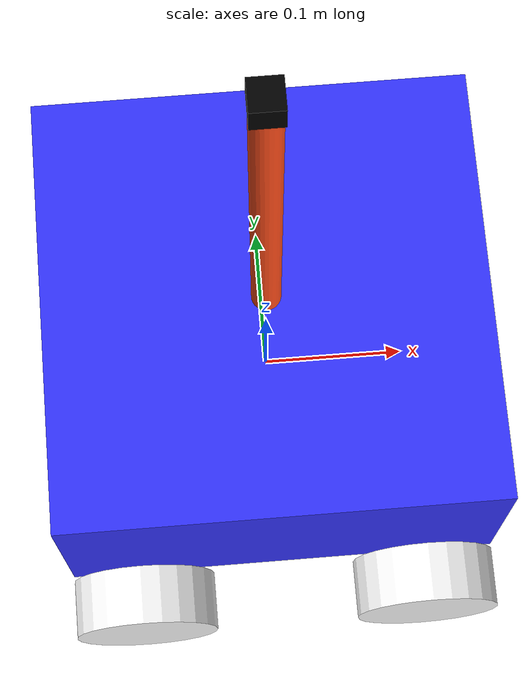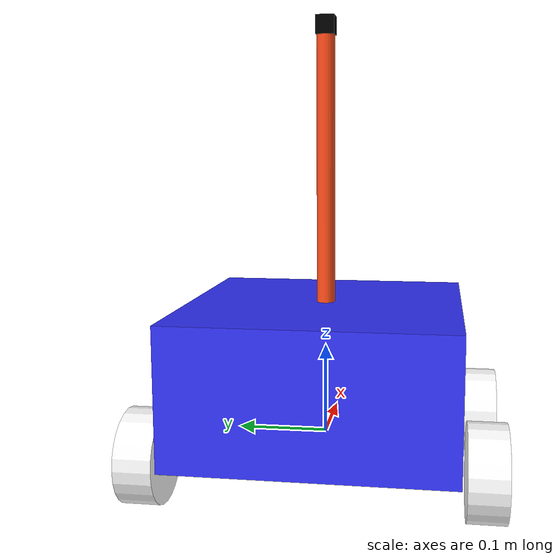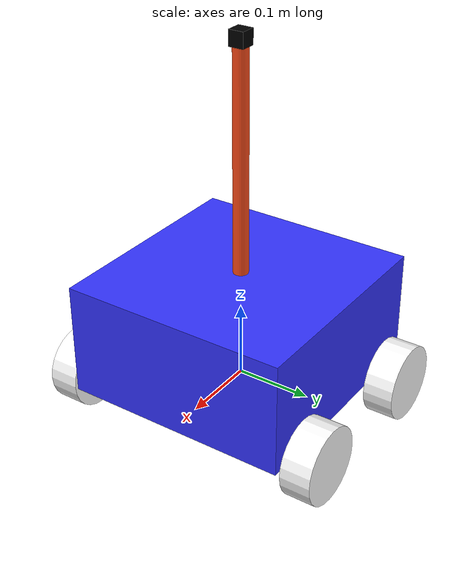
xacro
<?xml version="1.0"?>
<robot xmlns:xacro="http://www.ros.org/wiki/xacro">

    <xacro:include filename="inertial_macros.xacro"/>

    <material name="white">
        <color rgba="1 1 1 1"/>
    </material>

    <material name="orange">
        <color rgba="1 0.3 0.1 1"/>
    </material>

    <material name="blue">
        <color rgba="0.2 0.2 1 1"/>
    </material>

    <material name="black">
        <color rgba="0 0 0 1"/>
    </material>

    <material name="red">
        <color rgba="1 0 0 1"/>
    </material>

    <gazebo>
        <plugin filename="libgazebo_ros_control.so" name="gazebo_ros_control">
          <robotSimType>sr_gazebo_sim/SrGazeboHWSim</robotSimType>
        </plugin>
      </gazebo>

    <!-- BASE LINK/-->

    <link name="base_link">

    </link>

    <!--CHASSIS LINK/-->

    <joint name="chassis_joint" type="fixed">
        <parent link="base_link"/>
        <child link="chassis"/>
        <origin xyz="0.0 0.0 0.0"/>
    </joint>

    <link name="chassis">
        <visual>
            <origin xyz="0.0 0.0 0.075"/>
            <geometry>
                <box size="0.3 0.3 0.15"/>
            </geometry>
            <material name="blue"/>
        </visual>
        <collision>
            <origin xyz="0.0 0.0 0.075"/>
            <geometry>
                <box size="0.3 0.3 0.15"/>
            </geometry>
        </collision>
        <xacro:inertial_box mass="1.5" x="0.3" y="0.3" z="0.15">
            <origin xyz="0.0 0.0 0.075" rpy="0.0 0.0 0.0"/>
        </xacro:inertial_box>
    </link>

    <gazebo reference = "chassis">
        <material>Gazebo/Blue</material>
    </gazebo>

    <!-- LEFT WHEEL LINK -->

    <joint name="left_wheel_joint" type="continuous">
            <parent link="base_link"/>
            <child link="left_wheel"/>
            <origin xyz="-0.1 -0.175 0.0" rpy="-${pi/2}  0.0 0.0"/>
            <axis xyz="0.0 0.0 -1.0"/>
    </joint>

    <link name="left_wheel">
        <visual>
            <origin xyz="0.0 0.0 0.0" rpy="0.0  0.0 0.0"/>
            <geometry>
                <cylinder radius="0.05" length="0.04"/>

            </geometry>
            <material name="white"/>
        </visual>
        <collision>
            <geometry>
                <cylinder radius="0.05" length="0.04"/>
            </geometry>
        </collision>
        <xacro:inertial_cylinder mass="0.15"  radius="0.05" length="0.04">
            <origin xyz="0.0 0.0 0.0" rpy="0.0 0.0 0.0"/>
        </xacro:inertial_cylinder >
    </link>

    <gazebo reference = "left_wheel">
        <material>Gazebo/White</material>
    </gazebo>

    <!-- RIGHT WHEEL LINK -->

    <joint name="right_wheel_joint" type="continuous">
            <parent link="base_link"/>
            <child link="right_wheel"/>
            <origin xyz="-0.1 0.175 0.0" rpy="${pi/2}  0.0 0.0"/>
            <axis xyz="0.0 0.0 1.0"/>
    </joint>

    <link name="right_wheel">
        <visual>
            <origin xyz="0.0 0.0 0.0" rpy="0.0 0.0 0.0"/>
            <geometry>
                <cylinder radius="0.05" length="0.04"/>
            </geometry>
            <material name="white"/>
        </visual>
        <collision>
            <geometry>
                <cylinder radius="0.05" length="0.04"/>
            </geometry>
        </collision>
        <xacro:inertial_cylinder mass="0.15" length="0.04" radius="0.05" >
            <origin xyz="0.0 0.0 0.0" rpy="0.0 0.0 0.0"/>
        </xacro:inertial_cylinder >
    </link>

    <gazebo reference = "right_wheel">
        <material>Gazebo/White</material>
    </gazebo>

    <!-- CASTER WHEEL LINK-->

    <joint name="left_wheel_2_joint" type="continuous">
        <parent link="base_link"/>
        <child link="left_wheel_2"/>
        <origin xyz="0.1 -0.175 0.0" rpy="-${pi/2}  0.0 0.0"/>
        <axis xyz="0.0 0.0 -1.0"/>
    </joint>

    <link name="left_wheel_2">
        <visual>
            <origin xyz="0.0 0.0 0.0" rpy="0.0  0.0 0.0"/>
            <geometry>
                <cylinder radius="0.05" length="0.04"/>
            </geometry>
            <material name="white"/>
        </visual>
        <collision>
            <geometry>
                <cylinder radius="0.05" length="0.04"/>
            </geometry>
        </collision>
        <xacro:inertial_cylinder mass="0.15"  radius="0.05" length="0.04">
            <origin xyz="0.0 0.0 0.0" rpy="0.0 0.0 0.0"/>
        </xacro:inertial_cylinder >
    </link>
    <gazebo reference = "left_wheel_2">
        <material>Gazebo/White</material>
    </gazebo>

<!-- RIGHT WHEEL LINK -->

    <joint name="right_wheel_2_joint" type="continuous">
            <parent link="base_link"/>
            <child link="right_wheel_2"/>
            <origin xyz="0.1 0.175 0.0" rpy="${pi/2}  0.0 0.0"/>
            <axis xyz="0.0 0.0 1.0"/>
    </joint>

    <link name="right_wheel_2">
        <visual>
            <origin xyz="0.0 0.0 0.0" rpy="0.0 0.0 0.0"/>
            <geometry>
                <cylinder radius="0.05" length="0.04"/>
            </geometry>
            <material name="white"/>
        </visual>
        <collision>
            <geometry>
                <cylinder radius="0.05" length="0.04"/>
            </geometry>
        </collision>
        <xacro:inertial_cylinder mass="0.15" length="0.04" radius="0.05" >
            <origin xyz="0.0 0.0 0.0" rpy="0.0 0.0 0.0"/>
        </xacro:inertial_cylinder >
    </link>
    <gazebo reference = "right_wheel_2">
        <material>Gazebo/White</material>
    </gazebo>

    <link name="pole">
        <visual>
            <geometry>
                <cylinder length="0.3" radius="0.01"/>
            </geometry>
            <material name="orange"/>
            <origin rpy="0.0 0.0 -0.15" xyz="0.0 0.0 0.3"/>
        </visual>
        <collision>
            <geometry>
                <cylinder length="0.3" radius="0.01"/>
            </geometry>
        </collision>
        <xacro:inertial_cylinder mass="0.0"  radius="0.01" length="0.03">
            <origin xyz="0.0 0.0 0.0" rpy="0.0 0.0 0.0"/>
        </xacro:inertial_cylinder >
    </link>

    <joint name="pole_joint" type="revolute">
        <parent link="chassis"/>
        <child link="pole"/>
        <origin xyz="0.0 0.0 0.0" rpy="0.0 0.0 0.0"/>
        <axis xyz="0.0 1.0 0.0"/>
        <limit effort="1000.0" lower="-0.78" upper="0.78" velocity="1.0"/>
    </joint>

    <link name="conector_pole">
        <visual>
            <geometry>
                <box size="0.02 0.02 0.02"/>
            </geometry>
            <material name="black"/>
            <origin rpy="0.0 0.0 0.0" xyz="0.0 0.0 0.0"/>
        </visual>
        <collision>
            <geometry>
                <box size="0.02 0.02 0.02"/>
            </geometry>
        </collision>
        <xacro:inertial_box mass="0.0" x="0.02" y="0.02" z="0.02">
            <origin xyz="0.0 0.0 0.0" rpy="0.0 0.0 0.0"/>
        </xacro:inertial_box>
    </link>

    <joint name="conector_pole_joint" type="fixed">
        <parent link="pole"/>
        <child link="conector_pole"/>
        <origin xyz="0.0 0.0 0.45" />
    </joint>

    <gazebo reference = "pole">
        <material>Gazebo/Orange</material>
    </gazebo>

    <gazebo reference = "conector_pole">
        <material>Gazebo/Black</material>
    </gazebo>
</robot>
